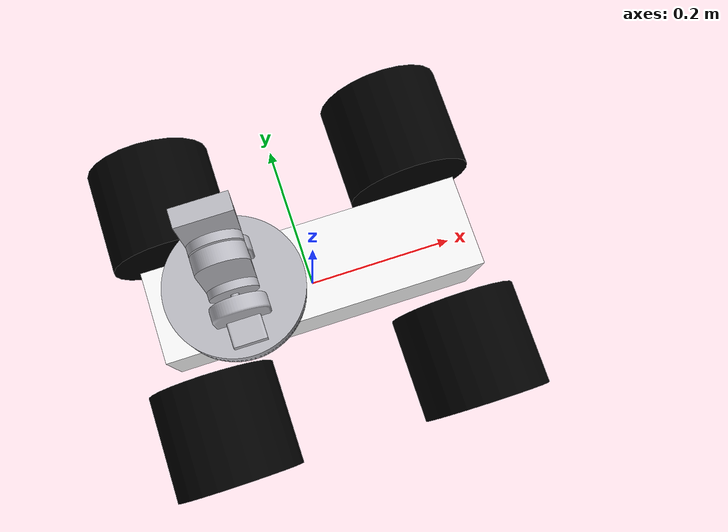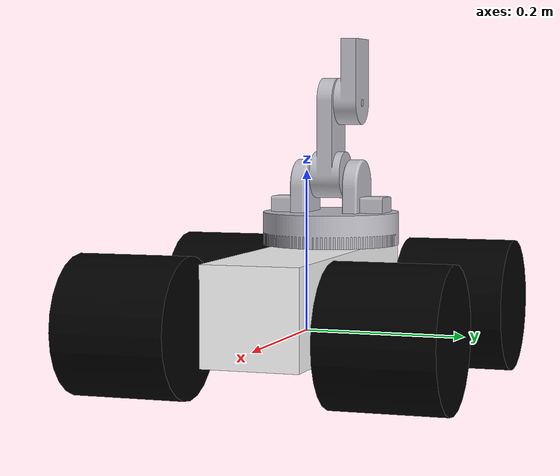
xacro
<?xml version="1.0"?>
<robot xmlns:xacro="http://www.ros.org/wiki/xacro" name="spartan_with_arm">
    <xacro:include filename="$(find spartan_description)/urdf/mech/wheel.urdf.xacro" />
    <xacro:include filename="$(find spartan_description)/urdf/mech/base.urdf.xacro" />
    <xacro:include filename="$(find spartan_description)/urdf/sensors/gps.urdf.xacro" />
    <xacro:include filename="$(find spartan_description)/urdf/mech/materials.xacro" />
    <xacro:include filename="$(find spartan_description)/urdf/mech/links.trans" />
    <xacro:include filename="$(find spartan_description)/urdf/mech/gazeboreference.xacro" />
    <xacro:arg name="robot_name" default="spartan" />
    <xacro:arg name="prefix" default="" />
    <xacro:arg name="use_gazebo" default="false" />
    <xacro:property name="base_length" value="0.420" />
    <xacro:property name="base_width" value="0.120" />
    <xacro:property name="base_height" value="0.120" />
    <xacro:property name="base_mass" value="5.0" />
    <xacro:property name="wheel_radius" value="0.085" />
    <xacro:property name="wheel_width" value="0.140" />
    <xacro:property name="wheel_mass" value="0.20" />
    <xacro:property name="caster_radius" value="0.015" />
    <xacro:property name="caster_mass" value="0.05" />
    <xacro:base prefix="$(arg prefix)" base_name="base" parent="base_footprint" xyz_offset="0 0 0" rpy_offset="0 0 0" base_length="${base_length}" base_width="${base_width}" base_height="${base_height}" base_mass="${base_mass}" />
    <xacro:wheel prefix="$(arg prefix)" wheel_name="front_left_wheel" parent="base_link" xyz_offset="0.170 0.1575 0.020" rpy_offset="0 0 0" axis="0 1 0" wheel_radius="${wheel_radius}" wheel_width="${wheel_width}" wheel_mass="${wheel_mass}" />
    <xacro:wheel prefix="$(arg prefix)" wheel_name="rear_right_wheel" parent="base_link" xyz_offset="-0.170 -0.1575 0.020" rpy_offset="0 0 0" axis="0 1 0" wheel_radius="${wheel_radius}" wheel_width="${wheel_width}" wheel_mass="${wheel_mass}" />
    <xacro:wheel prefix="$(arg prefix)" wheel_name="rear_left_wheel" parent="base_link" xyz_offset="0.170 -0.1575 0.020" rpy_offset="0 0 0" axis="0 1 0" wheel_radius="${wheel_radius}" wheel_width="${wheel_width}" wheel_mass="${wheel_mass}" />
    <xacro:wheel prefix="$(arg prefix)" wheel_name="front_right_wheel" parent="base_link" xyz_offset="-0.170 0.1575 0.020" rpy_offset="0 0 0" axis="0 1 0" wheel_radius="${wheel_radius}" wheel_width="${wheel_width}" wheel_mass="${wheel_mass}" />
    <xacro:gps prefix="$(arg prefix)" gps_name="gps" parent="base_link" xyz_offset="0 0 0.055" rpy_offset="0 0 0" />
    <link name="arm_base_link">
        <inertial>
            <origin xyz="-1.7801871495357475e-17 0.0 0.021" rpy="0 0 0" />
            <mass value="1.0371236783056947" />
            <inertia ixx="0.00216" iyy="0.00216" izz="0.004016" ixy="0.0" iyz="0.0" ixz="-0.0" />
        </inertial>
        <visual>
            <origin xyz="0 0 0" rpy="0 0 0" />
            <geometry>
                <mesh filename="package://spartan_description/meshes/base_link.stl" scale="0.001 0.001 0.001" />
            </geometry>
            <material name="silver" />
        </visual>
        <collision>
            <origin xyz="0 0 0" rpy="0 0 0" />
            <geometry>
                <mesh filename="package://spartan_description/meshes/base_link.stl" scale="0.001 0.001 0.001" />
            </geometry>
        </collision>
    </link>
    <link name="shoulder_joint_1">
        <inertial>
            <origin xyz="-1.1058193531197054e-17 -2.2116387062394108e-17 0.028693112951202672" rpy="0 0 0" />
            <mass value="0.8347992099208558" />
            <inertia ixx="0.002257" iyy="0.001671" izz="0.002679" ixy="-0.0" iyz="-0.0" ixz="-0.0" />
        </inertial>
        <visual>
            <origin xyz="-0.0 -0.0 -0.042" rpy="0 0 0" />
            <geometry>
                <mesh filename="package://spartan_description/meshes/shoulder_joint_1.stl" scale="0.001 0.001 0.001" />
            </geometry>
            <material name="silver" />
        </visual>
        <collision>
            <origin xyz="-0.0 -0.0 -0.042" rpy="0 0 0" />
            <geometry>
                <mesh filename="package://spartan_description/meshes/shoulder_joint_1.stl" scale="0.001 0.001 0.001" />
            </geometry>
        </collision>
    </link>
    <link name="shoulder_link_1">
        <inertial>
            <origin xyz="-6.525965052388168e-15 0.00028853892713764614 0.036803251637408" rpy="0 0 0" />
            <mass value="0.22986605225349233" />
            <inertia ixx="0.000434" iyy="0.000474" izz="8.1e-05" ixy="0.0" iyz="-4e-06" ixz="0.0" />
        </inertial>
        <visual>
            <origin xyz="-0.0 -0.0 -0.132" rpy="0 0 0" />
            <geometry>
                <mesh filename="package://spartan_description/meshes/shoulder_link_1.stl" scale="0.001 0.001 0.001" />
            </geometry>
            <material name="silver" />
        </visual>
        <collision>
            <origin xyz="-0.0 -0.0 -0.132" rpy="0 0 0" />
            <geometry>
                <mesh filename="package://spartan_description/meshes/shoulder_link_1.stl" scale="0.001 0.001 0.001" />
            </geometry>
        </collision>
    </link>
    <link name="elbow_link_1">
        <inertial>
            <origin xyz="8.210853317301837e-15 0.0032546291648698454 0.02520164796922139" rpy="0 0 0" />
            <mass value="0.1524453603735402" />
            <inertia ixx="0.000148" iyy="0.000181" izz="5.2e-05" ixy="0.0" iyz="-1e-05" ixz="0.0" />
        </inertial>
        <visual>
            <origin xyz="-0.0 -0.026 -0.225" rpy="0 0 0" />
            <geometry>
                <mesh filename="package://spartan_description/meshes/elbow_link_1.stl" scale="0.001 0.001 0.001" />
            </geometry>
            <material name="silver" />
        </visual>
        <collision>
            <origin xyz="-0.0 -0.026 -0.225" rpy="0 0 0" />
            <geometry>
                <mesh filename="package://spartan_description/meshes/elbow_link_1.stl" scale="0.001 0.001 0.001" />
            </geometry>
        </collision>
    </link>
    <joint name="arm_mount_joint" type="fixed">
        <parent link="base_link" />
        <child link="arm_base_link" />
        <origin xyz="-0.1 0 0.1" rpy="0 0 0" />
    </joint>
    <joint name="arm_revolute_1" type="revolute">
        <origin xyz="0.0 0.0 0.0" rpy="0 0 0"/>
        <parent link="arm_base_link"/>
        <child link="shoulder_joint_1"/>
        <axis xyz="0.0 0.0 1.0"/>
        <limit lower="-1.570796" upper="1.570796" effort="100" velocity="100"/>
    </joint>
    <joint name="arm_revolute_2" type="revolute">
        <origin xyz="0.0 0.0 0.09" rpy="0 0 0" />
        <parent link="shoulder_joint_1" />
        <child link="shoulder_link_1" />
        <axis xyz="0.0 -1.0 0.0" />
        <limit upper="1.570796" lower="-1.570796" effort="100" velocity="100" />
    </joint>
    <joint name="arm_revolute_3" type="revolute">
        <origin xyz="0.0 0.026 0.093" rpy="0 0 0"/>
        <parent link="shoulder_link_1"/>
        <child link="elbow_link_1"/>
        <axis xyz="0.0 1.0 0.0"/>
        <limit
            lower="-1.570796"
            upper="1.570796"
            effort="100"
            velocity="100"/>
    </joint>
</robot>

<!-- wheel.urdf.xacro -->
<robot xmlns:xacro="http://www.ros.org/wiki/xacro">

  <xacro:macro name="wheel" params="
    prefix:=''
    wheel_name:='left_wheel'
    parent:='base_link'
    xyz_offset:='0 0.0925 0.020'
    rpy_offset:='0 0 0'
    axis:='0 1 0'
    mesh_file:='package://benzene_description/meshes/v3/visual/wheel_link.stl'
    mesh_scale:='0.001 0.001 0.001'
    mesh_xyz_offset:='0 0 0'
    mesh_rpy_offset:='0 0 ${pi/2}'
    wheel_radius:=0.035
    wheel_width:=0.03
    wheel_mass:=0.5
    material_name:='black'
    material_color:='0 0 0 1'
    damping:=0.05
    friction:=0.05
  ">

    <joint name="${prefix}${wheel_name}_joint" type="continuous">
      <parent link="${prefix}${parent}"/>
      <child link="${prefix}${wheel_name}_link"/>
      <origin xyz="${xyz_offset}" rpy="${rpy_offset}"/>
      <axis xyz="${axis}"/>
      <dynamics damping="${damping}" friction="${friction}"/>
    </joint>

    <link name="${prefix}${wheel_name}_link">
      <visual>
        <origin xyz="0 0 0" rpy="-${pi/2} 0 0"/>
        <geometry>
          <cylinder radius="${wheel_radius}" length="${wheel_width}"/>
        </geometry>
        <material name="${material_name}">
          <color rgba="${material_color}"/>
        </material>
      </visual>

      <collision>
        <origin xyz="0 0 0" rpy="-${pi/2} 0 0"/>
        <geometry>
          <cylinder radius="${wheel_radius}" length="${wheel_width}"/>
        </geometry>
      </collision>
      <inertial>
        <origin xyz="0 0 0" rpy="0 0 0"/>
        <mass value="${wheel_mass}"/>
        <inertia
          ixx="${(1.0/12.0) * wheel_mass * (3*wheel_radius*wheel_radius + wheel_width*wheel_width)}"
          ixy="0.0"
          ixz="0.0"
          iyy="${(1.0/12.0) * wheel_mass * (3*wheel_radius*wheel_radius + wheel_width*wheel_width)}"
          iyz="0.0"
          izz="${0.5 * wheel_mass * wheel_radius*wheel_radius}"/>
      </inertial>
    </link>

    <gazebo reference="${prefix}${wheel_name}_link">
      <material>Gazebo/Black</material>
    </gazebo>

  </xacro:macro>

</robot>

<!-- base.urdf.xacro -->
<robot xmlns:xacro="http://www.ros.org/wiki/xacro">

  <xacro:macro name="base" params="
    prefix:=''
    base_name:='base'
    parent:='base_footprint'
    xyz_offset:='0 0 0'
    rpy_offset:='0 0 0'
    mesh_file:='package://benzene_description/meshes/v3/visual/base_link.stl'
    mesh_scale:='0.001 0.001 0.001'
    mesh_xyz_offset:='0 0 0'
    mesh_rpy_offset:='1.5708 0 ${pi/2}'
    base_length:=0.3
    base_width:=0.2
    base_height:=0.08
    base_mass:=5.0
    collision_xyz_offset:='0 0 0.04'
    collision_rpy_offset:='0 0 0'
    material_name:='white'
    material_color:='1 1 1 1'
  ">

    <link name="${prefix}${parent}"/>
    <joint name="${prefix}${base_name}_footprint_joint" type="fixed">
      <parent link="${prefix}${parent}"/>
      <child link="${prefix}${base_name}_link"/>
      <origin xyz="${xyz_offset}" rpy="${rpy_offset}"/>
    </joint>

    <link name="${prefix}${base_name}_link">
      <visual>
        <origin xyz="${collision_xyz_offset}" rpy="${collision_rpy_offset}"/>
        <geometry>
          <box size="${base_length} ${base_width} ${base_height}"/>
        </geometry>
        <material name="${material_name}">
          <color rgba="${material_color}"/>
        </material>
      </visual>

      <collision>
        <origin xyz="${collision_xyz_offset}" rpy="${collision_rpy_offset}"/>
        <geometry>
          <box size="${base_length} ${base_width} ${base_height}"/>
        </geometry>
      </collision>
      <inertial>
        <origin xyz="0 0 0" rpy="0 0 0"/>
        <mass value="${base_mass}"/>
        <inertia
          ixx="${(1.0/12.0) * base_mass * (base_width*base_width + base_height*base_height)}"
          ixy="0.0"
          ixz="0.0"
          iyy="${(1.0/12.0) * base_mass * (base_length*base_length + base_height*base_height)}"
          iyz="0.0"
          izz="${(1.0/12.0) * base_mass * (base_length*base_length + base_width*base_width)}"/>
      </inertial>
    </link>

  </xacro:macro>

</robot>

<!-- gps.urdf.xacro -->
<robot xmlns:xacro="http://www.ros.org/wiki/xacro">

  <xacro:macro name="gps" params="
    prefix:=''
    gps_name:='gps'
    parent:='base_link'
    xyz_offset:='0 0 0.08'
    rpy_offset:='0 0 0'
    gps_length:=0.04
    gps_width:=0.04
    gps_height:=0.015
    gps_mass:=0.05
    material_name:='blue'
    material_color:='0 0 1 1'
  ">

    <!-- GPS mounting joint -->
    <joint name="${prefix}${gps_name}_joint" type="fixed">
      <parent link="${prefix}${parent}"/>
      <child link="${prefix}${gps_name}_link"/>
      <origin xyz="${xyz_offset}" rpy="${rpy_offset}"/>
    </joint>

    <!-- GPS link -->
    <link name="${prefix}${gps_name}_link">

      <!-- Visual geometry -->
      <visual>
        <origin xyz="0 0 0" rpy="0 0 0"/>
        <geometry>
          <box size="${gps_length} ${gps_width} ${gps_height}"/>
        </geometry>
        <material name="${material_name}">
          <color rgba="${material_color}"/>
        </material>
      </visual>

      <!-- Collision geometry -->
      <collision>
        <origin xyz="0 0 0" rpy="0 0 0"/>
        <geometry>
          <box size="${gps_length} ${gps_width} ${gps_height}"/>
        </geometry>
      </collision>

      <!-- Inertial properties -->
      <inertial>
        <origin xyz="0 0 0" rpy="0 0 0"/>
        <mass value="${gps_mass}"/>
        <inertia
          ixx="${(1.0/12.0) * gps_mass * (gps_width*gps_width + gps_height*gps_height)}"
          ixy="0.0"
          ixz="0.0"
          iyy="${(1.0/12.0) * gps_mass * (gps_length*gps_length + gps_height*gps_height)}"
          iyz="0.0"
          izz="${(1.0/12.0) * gps_mass * (gps_length*gps_length + gps_width*gps_width)}"/>
      </inertial>

    </link>

    <!-- Gazebo material -->
    <gazebo reference="${prefix}${gps_name}_link">
      <material>Gazebo/Blue</material>
    </gazebo>

  </xacro:macro>

</robot>

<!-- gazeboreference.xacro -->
<robot name="(Unsaved)" xmlns:xacro="http://www.ros.org/wiki/xacro">

    <xacro:property name="body_color" value="Gazebo/Silver" />

    <gazebo>
        <plugin name="control" filename="libgazebo_ros_control.so" />
    </gazebo>
    <gazebo reference="base_link">
        <material>${body_color}</material>
        <mu1>0.2</mu1>
        <mu2>0.2</mu2>
        <self_collide>true</self_collide>
        <gravity>true</gravity>
    </gazebo>

    <gazebo reference="shoulder_joint_1">
        <material>${body_color}</material>
        <mu1>0.2</mu1>
        <mu2>0.2</mu2>
        <self_collide>true</self_collide>
    </gazebo>

    <gazebo reference="shoulder_link_1">
        <material>${body_color}</material>
        <mu1>0.2</mu1>
        <mu2>0.2</mu2>
        <self_collide>true</self_collide>
    </gazebo>

    <gazebo reference="elbow_link_1">
        <material>${body_color}</material>
        <mu1>0.2</mu1>
        <mu2>0.2</mu2>
        <self_collide>true</self_collide>
    </gazebo>

</robot>
